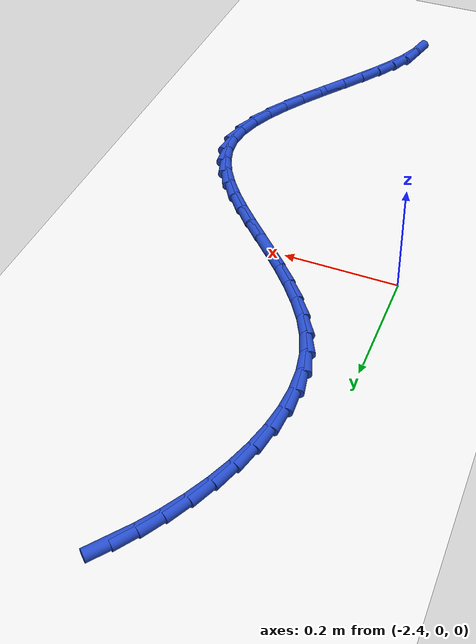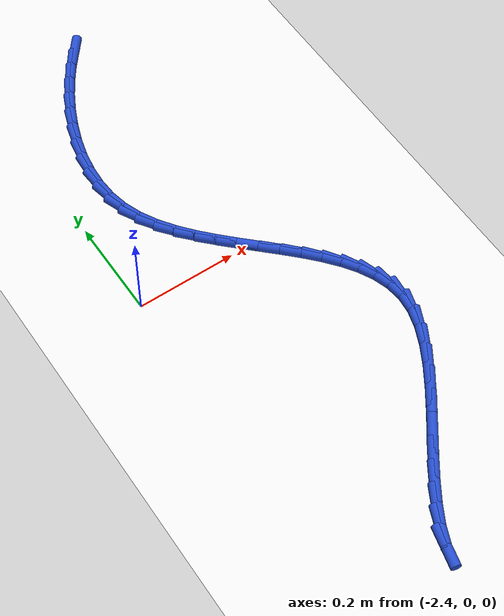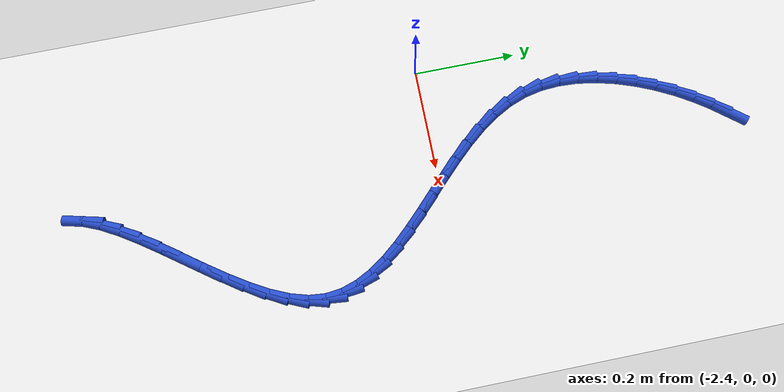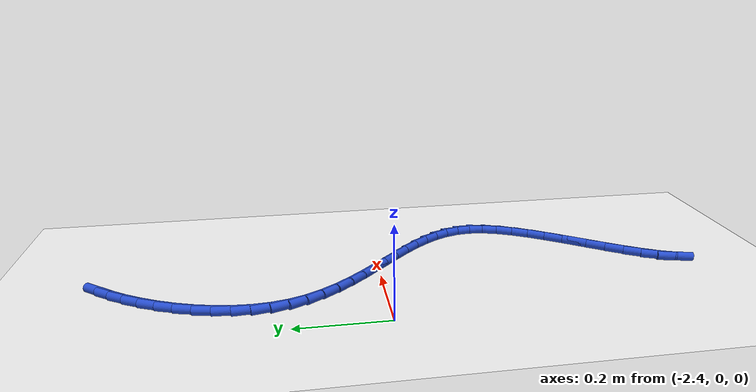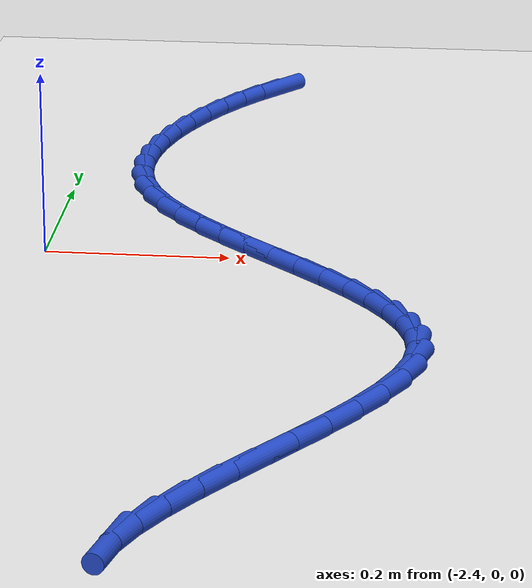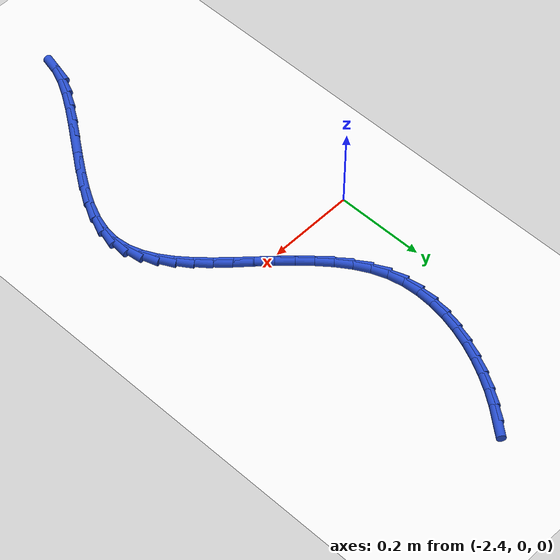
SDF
<sdf version="1.6">
 <world name="default">
  <model name="ground_plane">
   <static>1</static>
   <link name="link">
    <collision name="collision">
     <geometry><plane><normal>0 0 1</normal><size>100 100</size></plane></geometry>
     <surface><friction><ode><mu>100</mu><mu2>50</mu2></ode></friction></surface>
    </collision>
    <visual name="visual">
     <cast_shadows>0</cast_shadows>
     <geometry><plane><normal>0 0 1</normal><size>100 100</size></plane></geometry>
     <material>
      <script><uri>file://media/materials/scripts/gazebo.material</uri><name>Gazebo/WhiteGlow</name></script>
     </material>
    </visual>
   </link>
  </model>
  <model name="line">
   <link name="link_94">
    <pose>-2.195660880677247 0.5880036199857122 0.01 0 1.57 0.8934111167393081</pose>
    <collision name="collision">
     <geometry><cylinder><radius>0.01</radius><length>0.08</length></cylinder></geometry>
    </collision>
    <visual name="visual">
     <material>
      <script><name>Gazebo/Blue</name><uri>file://media/materials/scripts/gazebo.material</uri></script>
     </material>
     <geometry><cylinder><radius>0.01</radius><length>0.08</length></cylinder></geometry>
    </visual>
   </link>
   <link name="link_95">
    <pose>-2.217937724702207 0.5603080144955797 0.01 0 1.57 0.9587983843300413</pose>
    <collision name="collision">
     <geometry><cylinder><radius>0.01</radius><length>0.08</length></cylinder></geometry>
    </collision>
    <visual name="visual">
     <material>
      <script><name>Gazebo/Blue</name><uri>file://media/materials/scripts/gazebo.material</uri></script>
     </material>
     <geometry><cylinder><radius>0.01</radius><length>0.08</length></cylinder></geometry>
    </visual>
   </link>
   <link name="link_96">
    <pose>-2.2393122458448316 0.5298555078597347 0.01 0 1.57 1.0231264490821186</pose>
    <collision name="collision">
     <geometry><cylinder><radius>0.01</radius><length>0.08</length></cylinder></geometry>
    </collision>
    <visual name="visual">
     <material>
      <script><name>Gazebo/Blue</name><uri>file://media/materials/scripts/gazebo.material</uri></script>
     </material>
     <geometry><cylinder><radius>0.01</radius><length>0.08</length></cylinder></geometry>
    </visual>
   </link>
   <link name="link_97">
    <pose>-2.2593299148650705 0.497034479382405 0.01 0 1.57 1.0884956772914613</pose>
    <collision name="collision">
     <geometry><cylinder><radius>0.01</radius><length>0.08</length></cylinder></geometry>
    </collision>
    <visual name="visual">
     <material>
      <script><name>Gazebo/Blue</name><uri>file://media/materials/scripts/gazebo.material</uri></script>
     </material>
     <geometry><cylinder><radius>0.01</radius><length>0.08</length></cylinder></geometry>
    </visual>
   </link>
   <link name="link_98">
    <pose>-2.277524675596383 0.46228104955314214 0.01 0 1.57 1.1573086010069873</pose>
    <collision name="collision">
     <geometry><cylinder><radius>0.01</radius><length>0.08</length></cylinder></geometry>
    </collision>
    <visual name="visual">
     <material>
      <script><name>Gazebo/Blue</name><uri>file://media/materials/scripts/gazebo.material</uri></script>
     </material>
     <geometry><cylinder><radius>0.01</radius><length>0.08</length></cylinder></geometry>
    </visual>
   </link>
   <link name="link_99">
    <pose>-2.2934304718722274 0.4260313388614971 0.01 0 1.57 1.2319188156580057</pose>
    <collision name="collision">
     <geometry><cylinder><radius>0.01</radius><length>0.08</length></cylinder></geometry>
    </collision>
    <visual name="visual">
     <material>
      <script><name>Gazebo/Blue</name><uri>file://media/materials/scripts/gazebo.material</uri></script>
     </material>
     <geometry><cylinder><radius>0.01</radius><length>0.08</length></cylinder></geometry>
    </visual>
   </link>
   <link name="link_100">
    <pose>-2.30658124752606 0.38872146779702266 0.01 0 1.57 1.3147774990512804</pose>
    <collision name="collision">
     <geometry><cylinder><radius>0.01</radius><length>0.08</length></cylinder></geometry>
    </collision>
    <visual name="visual">
     <material>
      <script><name>Gazebo/Blue</name><uri>file://media/materials/scripts/gazebo.material</uri></script>
     </material>
     <geometry><cylinder><radius>0.01</radius><length>0.08</length></cylinder></geometry>
    </visual>
   </link>
   <link name="link_101">
    <pose>-2.3165109463913387 0.3507875568492692 0.01 0 1.57 1.408483854132771</pose>
    <collision name="collision">
     <geometry><cylinder><radius>0.01</radius><length>0.08</length></cylinder></geometry>
    </collision>
    <visual name="visual">
     <material>
      <script><name>Gazebo/Blue</name><uri>file://media/materials/scripts/gazebo.material</uri></script>
     </material>
     <geometry><cylinder><radius>0.01</radius><length>0.08</length></cylinder></geometry>
    </visual>
   </link>
   <link name="link_102">
    <pose>-2.3227535123015217 0.31266572650778973 0.01 0 1.57 1.5156851297444407</pose>
    <collision name="collision">
     <geometry><cylinder><radius>0.01</radius><length>0.08</length></cylinder></geometry>
    </collision>
    <visual name="visual">
     <material>
      <script><name>Gazebo/Blue</name><uri>file://media/materials/scripts/gazebo.material</uri></script>
     </material>
     <geometry><cylinder><radius>0.01</radius><length>0.08</length></cylinder></geometry>
    </visual>
   </link>
   <link name="link_103">
    <pose>-2.324842889090067 0.2747920972621347 0.01 0 1.57 -1.5028742003335762</pose>
    <collision name="collision">
     <geometry><cylinder><radius>0.01</radius><length>0.08</length></cylinder></geometry>
    </collision>
    <visual name="visual">
     <material>
      <script><name>Gazebo/Blue</name><uri>file://media/materials/scripts/gazebo.material</uri></script>
     </material>
     <geometry><cylinder><radius>0.01</radius><length>0.08</length></cylinder></geometry>
    </visual>
   </link>
   <link name="link_104">
    <pose>-2.322313020590432 0.23760278960185682 0.01 0 1.57 -1.3627234245424895</pose>
    <collision name="collision">
     <geometry><cylinder><radius>0.01</radius><length>0.08</length></cylinder></geometry>
    </collision>
    <visual name="visual">
     <material>
      <script><name>Gazebo/Blue</name><uri>file://media/materials/scripts/gazebo.material</uri></script>
     </material>
     <geometry><cylinder><radius>0.01</radius><length>0.08</length></cylinder></geometry>
    </visual>
   </link>
   <link name="link_105">
    <pose>-2.3146978506360747 0.20153392401650683 0.01 0 1.57 -1.2096227492341878</pose>
    <collision name="collision">
     <geometry><cylinder><radius>0.01</radius><length>0.08</length></cylinder></geometry>
    </collision>
    <visual name="visual">
     <material>
      <script><name>Gazebo/Blue</name><uri>file://media/materials/scripts/gazebo.material</uri></script>
     </material>
     <geometry><cylinder><radius>0.01</radius><length>0.08</length></cylinder></geometry>
    </visual>
   </link>
   <link name="link_106">
    <pose>-2.3016411123728897 0.16696881460858692 0.01 0 1.57 -1.072024481981784</pose>
    <collision name="collision">
     <geometry><cylinder><radius>0.01</radius><length>0.08</length></cylinder></geometry>
    </collision>
    <visual name="visual">
     <material>
      <script><name>Gazebo/Blue</name><uri>file://media/materials/scripts/gazebo.material</uri></script>
     </material>
     <geometry><cylinder><radius>0.01</radius><length>0.08</length></cylinder></geometry>
    </visual>
   </link>
   <link name="link_107">
    <pose>-2.2836221658155527 0.13388885625110372 0.01 0 1.57 -0.9630562690187483</pose>
    <collision name="collision">
     <geometry><cylinder><radius>0.01</radius><length>0.08</length></cylinder></geometry>
    </collision>
    <visual name="visual">
     <material>
      <script><name>Gazebo/Blue</name><uri>file://media/materials/scripts/gazebo.material</uri></script>
     </material>
     <geometry><cylinder><radius>0.01</radius><length>0.08</length></cylinder></geometry>
    </visual>
   </link>
   <link name="link_108">
    <pose>-2.2615045913169793 0.10209064178630864 0.01 0 1.57 -0.8808822613265451</pose>
    <collision name="collision">
     <geometry><cylinder><radius>0.01</radius><length>0.08</length></cylinder></geometry>
    </collision>
    <visual name="visual">
     <material>
      <script><name>Gazebo/Blue</name><uri>file://media/materials/scripts/gazebo.material</uri></script>
     </material>
     <geometry><cylinder><radius>0.01</radius><length>0.08</length></cylinder></geometry>
    </visual>
   </link>
   <link name="link_109">
    <pose>-2.236153999207501 0.07136978767933129 0.01 0 1.57 -0.822380259988656</pose>
    <collision name="collision">
     <geometry><cylinder><radius>0.01</radius><length>0.08</length></cylinder></geometry>
    </collision>
    <visual name="visual">
     <material>
      <script><name>Gazebo/Blue</name><uri>file://media/materials/scripts/gazebo.material</uri></script>
     </material>
     <geometry><cylinder><radius>0.01</radius><length>0.08</length></cylinder></geometry>
    </visual>
   </link>
   <link name="link_110">
    <pose>-2.2084359998174485 0.04152191039529977 0.01 0 1.57 -0.7847044480579798</pose>
    <collision name="collision">
     <geometry><cylinder><radius>0.01</radius><length>0.08</length></cylinder></geometry>
    </collision>
    <visual name="visual">
     <material>
      <script><name>Gazebo/Blue</name><uri>file://media/materials/scripts/gazebo.material</uri></script>
     </material>
     <geometry><cylinder><radius>0.01</radius><length>0.08</length></cylinder></geometry>
    </visual>
   </link>
   <link name="link_111">
    <pose>-2.1792162034771536 0.012342626399343685 0.01 0 1.57 -0.7659215736770063</pose>
    <collision name="collision">
     <geometry><cylinder><radius>0.01</radius><length>0.08</length></cylinder></geometry>
    </collision>
    <visual name="visual">
     <material>
      <script><name>Gazebo/Blue</name><uri>file://media/materials/scripts/gazebo.material</uri></script>
     </material>
     <geometry><cylinder><radius>0.01</radius><length>0.08</length></cylinder></geometry>
    </visual>
   </link>
   <link name="link_112">
    <pose>-2.1493602205169466 -0.016372447843408817 0.01 0 1.57 -0.7652343198138426</pose>
    <collision name="collision">
     <geometry><cylinder><radius>0.01</radius><length>0.08</length></cylinder></geometry>
    </collision>
    <visual name="visual">
     <material>
      <script><name>Gazebo/Blue</name><uri>file://media/materials/scripts/gazebo.material</uri></script>
     </material>
     <geometry><cylinder><radius>0.01</radius><length>0.08</length></cylinder></geometry>
    </visual>
   </link>
   <link name="link_113">
    <pose>-2.1197336612671585 -0.04482769586782816 0.01 0 1.57 -0.7830845053154184</pose>
    <collision name="collision">
     <geometry><cylinder><radius>0.01</radius><length>0.08</length></cylinder></geometry>
    </collision>
    <visual name="visual">
     <material>
      <script><name>Gazebo/Blue</name><uri>file://media/materials/scripts/gazebo.material</uri></script>
     </material>
     <geometry><cylinder><radius>0.01</radius><length>0.08</length></cylinder></geometry>
    </visual>
   </link>
   <link name="link_114">
    <pose>-2.09120213605812 -0.07322750120878617 0.01 0 1.57 -0.8212659153482724</pose>
    <collision name="collision">
     <geometry><cylinder><radius>0.01</radius><length>0.08</length></cylinder></geometry>
    </collision>
    <visual name="visual">
     <material>
      <script><name>Gazebo/Blue</name><uri>file://media/materials/scripts/gazebo.material</uri></script>
     </material>
     <geometry><cylinder><radius>0.01</radius><length>0.08</length></cylinder></geometry>
    </visual>
   </link>
   <link name="link_115">
    <pose>-2.0646312552201636 -0.10177624740115335 0.01 0 1.57 -0.8830498828494289</pose>
    <collision name="collision">
     <geometry><cylinder><radius>0.01</radius><length>0.08</length></cylinder></geometry>
    </collision>
    <visual name="visual">
     <material>
      <script><name>Gazebo/Blue</name><uri>file://media/materials/scripts/gazebo.material</uri></script>
     </material>
     <geometry><cylinder><radius>0.01</radius><length>0.08</length></cylinder></geometry>
    </visual>
   </link>
   <link name="link_116">
    <pose>-2.040886629083619 -0.13067831797980112 0.01 0 1.57 -0.9731529923519724</pose>
    <collision name="collision">
     <geometry><cylinder><radius>0.01</radius><length>0.08</length></cylinder></geometry>
    </collision>
    <visual name="visual">
     <material>
      <script><name>Gazebo/Blue</name><uri>file://media/materials/scripts/gazebo.material</uri></script>
     </material>
     <geometry><cylinder><radius>0.01</radius><length>0.08</length></cylinder></geometry>
    </visual>
   </link>
   <link name="link_117">
    <pose>-2.0208338679788174 -0.16013809647960137 0.01 0 1.57 -1.097026448394107</pose>
    <collision name="collision">
     <geometry><cylinder><radius>0.01</radius><length>0.08</length></cylinder></geometry>
    </collision>
    <visual name="visual">
     <material>
      <script><name>Gazebo/Blue</name><uri>file://media/materials/scripts/gazebo.material</uri></script>
     </material>
     <geometry><cylinder><radius>0.01</radius><length>0.08</length></cylinder></geometry>
    </visual>
   </link>
   <link name="link_118">
    <pose>-2.0053385822360905 -0.1903599664354238 0.01 0 1.57 -1.2584219036763007</pose>
    <collision name="collision">
     <geometry><cylinder><radius>0.01</radius><length>0.08</length></cylinder></geometry>
    </collision>
    <visual name="visual">
     <material>
      <script><name>Gazebo/Blue</name><uri>file://media/materials/scripts/gazebo.material</uri></script>
     </material>
     <geometry><cylinder><radius>0.01</radius><length>0.08</length></cylinder></geometry>
    </visual>
   </link>
   <link name="link_119">
    <pose>-1.9952663821857686 -0.22154831138214023 0.01 0 1.57 -1.4544027649138644</pose>
    <collision name="collision">
     <geometry><cylinder><radius>0.01</radius><length>0.08</length></cylinder></geometry>
    </collision>
    <visual name="visual">
     <material>
      <script><name>Gazebo/Blue</name><uri>file://media/materials/scripts/gazebo.material</uri></script>
     </material>
     <geometry><cylinder><radius>0.01</radius><length>0.08</length></cylinder></geometry>
    </visual>
   </link>
   <link name="link_120">
    <pose>-1.991482878158183 -0.2539075148546218 0.01 0 1.57 1.472128926243075</pose>
    <collision name="collision">
     <geometry><cylinder><radius>0.01</radius><length>0.08</length></cylinder></geometry>
    </collision>
    <visual name="visual">
     <material>
      <script><name>Gazebo/Blue</name><uri>file://media/materials/scripts/gazebo.material</uri></script>
     </material>
     <geometry><cylinder><radius>0.01</radius><length>0.08</length></cylinder></geometry>
    </visual>
   </link>
   <link name="link_121">
    <pose>-1.9948214568569245 -0.2876343351567484 0.01 0 1.57 1.2836334623306511</pose>
    <collision name="collision">
     <geometry><cylinder><radius>0.01</radius><length>0.08</length></cylinder></geometry>
    </collision>
    <visual name="visual">
     <material>
      <script><name>Gazebo/Blue</name><uri>file://media/materials/scripts/gazebo.material</uri></script>
     </material>
     <geometry><cylinder><radius>0.01</radius><length>0.08</length></cylinder></geometry>
    </visual>
   </link>
   <link name="link_122">
    <pose>-2.0051783588270347 -0.322703769212493 0.01 0 1.57 1.1491104516156285</pose>
    <collision name="collision">
     <geometry><cylinder><radius>0.01</radius><length>0.08</length></cylinder></geometry>
    </collision>
    <visual name="visual">
     <material>
      <script><name>Gazebo/Blue</name><uri>file://media/materials/scripts/gazebo.material</uri></script>
     </material>
     <geometry><cylinder><radius>0.01</radius><length>0.08</length></cylinder></geometry>
    </visual>
   </link>
   <link name="link_123">
    <pose>-2.021388817669023 -0.35883974279543535 0.01 0 1.57 1.0567905054353375</pose>
    <collision name="collision">
     <geometry><cylinder><radius>0.01</radius><length>0.08</length></cylinder></geometry>
    </collision>
    <visual name="visual">
     <material>
      <script><name>Gazebo/Blue</name><uri>file://media/materials/scripts/gazebo.material</uri></script>
     </material>
     <geometry><cylinder><radius>0.01</radius><length>0.08</length></cylinder></geometry>
    </visual>
   </link>
   <link name="link_124">
    <pose>-2.0422309514759056 -0.395752666163312 0.01 0 1.57 0.9955169095562314</pose>
    <collision name="collision">
     <geometry><cylinder><radius>0.01</radius><length>0.08</length></cylinder></geometry>
    </collision>
    <visual name="visual">
     <material>
      <script><name>Gazebo/Blue</name><uri>file://media/materials/scripts/gazebo.material</uri></script>
     </material>
     <geometry><cylinder><radius>0.01</radius><length>0.08</length></cylinder></geometry>
    </visual>
   </link>
   <link name="link_125">
    <pose>-2.0664828783407 -0.43315294957385836 0.01 0 1.57 0.9579101592465861</pose>
    <collision name="collision">
     <geometry><cylinder><radius>0.01</radius><length>0.08</length></cylinder></geometry>
    </collision>
    <visual name="visual">
     <material>
      <script><name>Gazebo/Blue</name><uri>file://media/materials/scripts/gazebo.material</uri></script>
     </material>
     <geometry><cylinder><radius>0.01</radius><length>0.08</length></cylinder></geometry>
    </visual>
   </link>
   <link name="link_126">
    <pose>-2.092922716356421 -0.470751003284811 0.01 0 1.57 0.939760995427528</pose>
    <collision name="collision">
     <geometry><cylinder><radius>0.01</radius><length>0.08</length></cylinder></geometry>
    </collision>
    <visual name="visual">
     <material>
      <script><name>Gazebo/Blue</name><uri>file://media/materials/scripts/gazebo.material</uri></script>
     </material>
     <geometry><cylinder><radius>0.01</radius><length>0.08</length></cylinder></geometry>
    </visual>
   </link>
   <link name="link_127">
    <pose>-2.1203285836160846 -0.5082572375539036 0.01 0 1.57 0.939359971934647</pose>
    <collision name="collision">
     <geometry><cylinder><radius>0.01</radius><length>0.08</length></cylinder></geometry>
    </collision>
    <visual name="visual">
     <material>
      <script><name>Gazebo/Blue</name><uri>file://media/materials/scripts/gazebo.material</uri></script>
     </material>
     <geometry><cylinder><radius>0.01</radius><length>0.08</length></cylinder></geometry>
    </visual>
   </link>
   <link name="link_128">
    <pose>-2.147478598212707 -0.5453820626388725 0.01 0 1.57 0.9572297020263767</pose>
    <collision name="collision">
     <geometry><cylinder><radius>0.01</radius><length>0.08</length></cylinder></geometry>
    </collision>
    <visual name="visual">
     <material>
      <script><name>Gazebo/Blue</name><uri>file://media/materials/scripts/gazebo.material</uri></script>
     </material>
     <geometry><cylinder><radius>0.01</radius><length>0.08</length></cylinder></geometry>
    </visual>
   </link>
   <link name="link_129">
    <pose>-2.1731508782393045 -0.5818358887974532 0.01 0 1.57 0.9963633924737451</pose>
    <collision name="collision">
     <geometry><cylinder><radius>0.01</radius><length>0.08</length></cylinder></geometry>
    </collision>
    <visual name="visual">
     <material>
      <script><name>Gazebo/Blue</name><uri>file://media/materials/scripts/gazebo.material</uri></script>
     </material>
     <geometry><cylinder><radius>0.01</radius><length>0.08</length></cylinder></geometry>
    </visual>
   </link>
   <link name="link_130">
    <pose>-2.1961235417888934 -0.6173291262873813 0.01 0 1.57 1.0630900764562028</pose>
    <collision name="collision">
     <geometry><cylinder><radius>0.01</radius><length>0.08</length></cylinder></geometry>
    </collision>
    <visual name="visual">
     <material>
      <script><name>Gazebo/Blue</name><uri>file://media/materials/scripts/gazebo.material</uri></script>
     </material>
     <geometry><cylinder><radius>0.01</radius><length>0.08</length></cylinder></geometry>
    </visual>
   </link>
   <link name="link_131">
    <pose>-2.2151747069544907 -0.6515721853663933 0.01 0 1.57 1.1686955501762157</pose>
    <collision name="collision">
     <geometry><cylinder><radius>0.01</radius><length>0.08</length></cylinder></geometry>
    </collision>
    <visual name="visual">
     <material>
      <script><name>Gazebo/Blue</name><uri>file://media/materials/scripts/gazebo.material</uri></script>
     </material>
     <geometry><cylinder><radius>0.01</radius><length>0.08</length></cylinder></geometry>
    </visual>
   </link>
   <link name="link_132">
    <pose>-2.2290824918291103 -0.6842754762922227 0.01 0 1.57 1.3311888856534824</pose>
    <collision name="collision">
     <geometry><cylinder><radius>0.01</radius><length>0.08</length></cylinder></geometry>
    </collision>
    <visual name="visual">
     <material>
      <script><name>Gazebo/Blue</name><uri>file://media/materials/scripts/gazebo.material</uri></script>
     </material>
     <geometry><cylinder><radius>0.01</radius><length>0.08</length></cylinder></geometry>
    </visual>
   </link>
  </model>
 </world>
</sdf>
